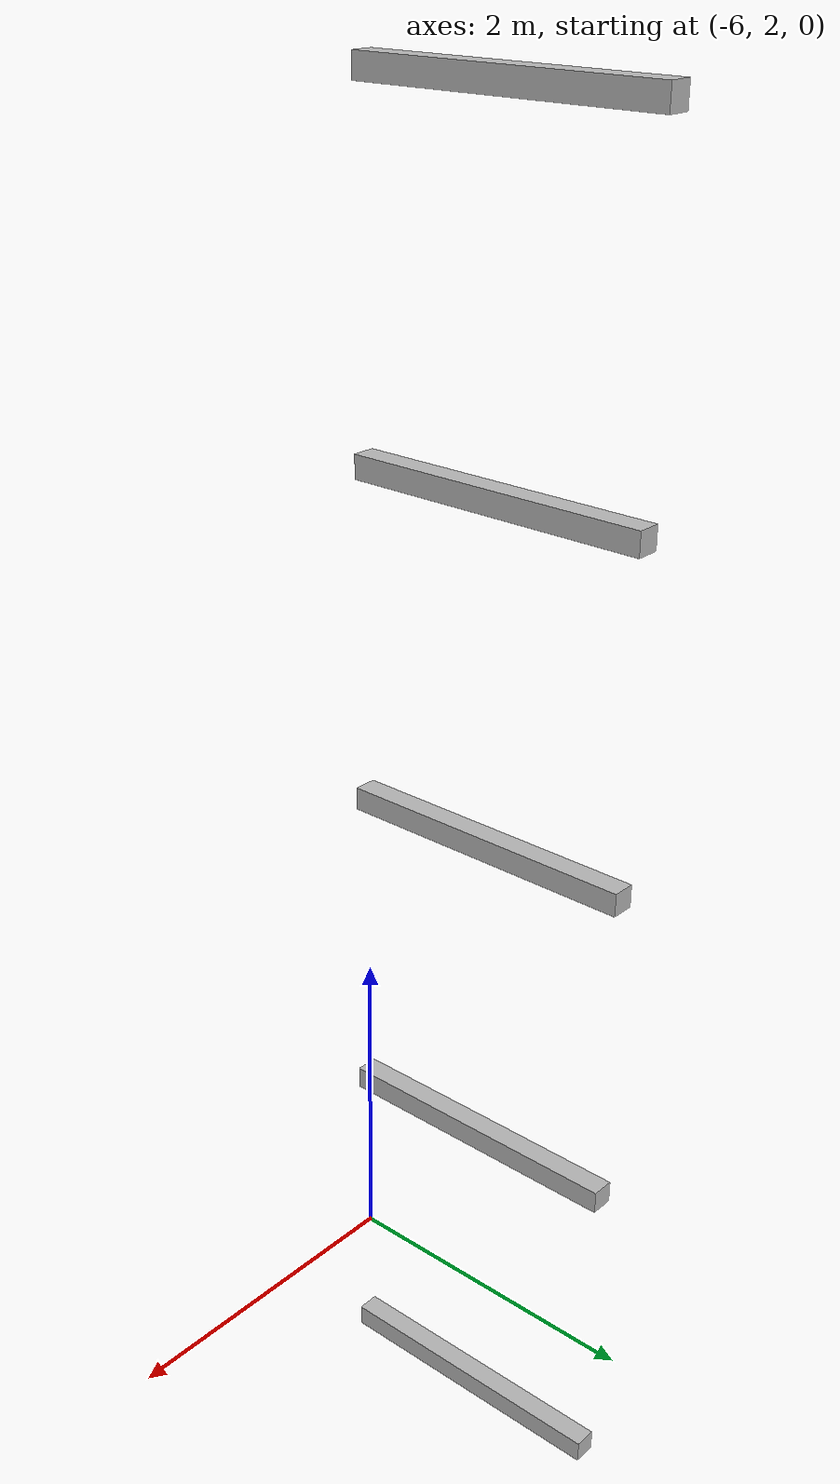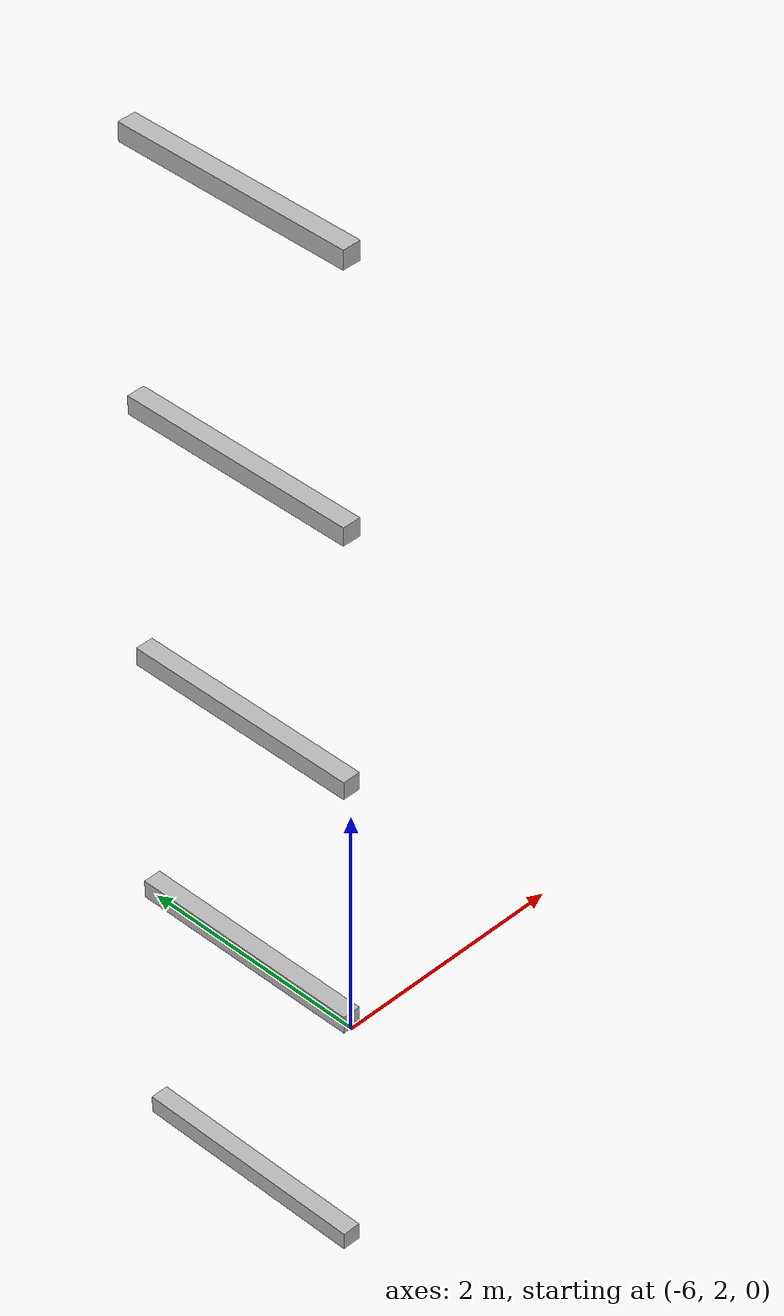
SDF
<sdf version="1.7">
 <world name="default">
  <model name="orthogonal_747_2.000.15_TS">
   <static>1</static>
   <link name="y_link_0_3_0">
    <inertial>
     <mass>1</mass>
     <inertia>
      <ixx>0.166667</ixx>
      <ixy>0</ixy>
      <ixz>0</ixz>
      <iyy>0.166667</iyy>
      <iyz>0</iyz>
      <izz>0.166667</izz>
     </inertia>
    </inertial>
    <pose>0 7.525 1.075 0 -0 0</pose>
    <visual name="visual_0">
     <laser_retro>491</laser_retro>
     <geometry><box><size>0.15 1e-06 0.15</size></box></geometry>
     <material>
      <script><name>Gazebo/Grey</name><uri>file://media/materials/scripts/gazebo.material</uri></script>
      <shader type="pixel"><normal_map>__default__</normal_map></shader>
      <ambient>0.678 0.498 0.659 1</ambient>
      <diffuse>0.7 0.7 0.7 1</diffuse>
      <specular>0.01 0.01 0.01 1</specular>
      <emissive>0 0 0 1</emissive>
     </material>
     <pose>0 -1 0 0 -0 0</pose>
     <transparency>1</transparency>
    </visual>
    <visual name="visual_1">
     <laser_retro>492</laser_retro>
     <geometry><box><size>0.15 1e-06 0.15</size></box></geometry>
     <material>
      <script><name>Gazebo/Grey</name><uri>file://media/materials/scripts/gazebo.material</uri></script>
      <shader type="pixel"><normal_map>__default__</normal_map></shader>
      <ambient>0.447 0.624 0.812 1</ambient>
      <diffuse>0.7 0.7 0.7 1</diffuse>
      <specular>0.01 0.01 0.01 1</specular>
      <emissive>0 0 0 1</emissive>
     </material>
     <pose>0 1 0 0 -0 0</pose>
     <transparency>1</transparency>
    </visual>
    <visual name="visual_2">
     <laser_retro>493</laser_retro>
     <geometry><box><size>0.15 2 1e-06</size></box></geometry>
     <material>
      <script><name>Gazebo/Grey</name><uri>file://media/materials/scripts/gazebo.material</uri></script>
      <shader type="pixel"><normal_map>__default__</normal_map></shader>
      <ambient>0.988 0.686 0.243 1</ambient>
      <diffuse>0.7 0.7 0.7 1</diffuse>
      <specular>0.01 0.01 0.01 1</specular>
      <emissive>0 0 0 1</emissive>
     </material>
     <pose>0 0 -0.075 0 -0 0</pose>
     <transparency>1</transparency>
    </visual>
    <visual name="visual_3">
     <laser_retro>494</laser_retro>
     <geometry><box><size>1e-06 2 0.15</size></box></geometry>
     <material>
      <script><name>Gazebo/Grey</name><uri>file://media/materials/scripts/gazebo.material</uri></script>
      <shader type="pixel"><normal_map>__default__</normal_map></shader>
      <ambient>0.988 0.914 0.31 1</ambient>
      <diffuse>0.7 0.7 0.7 1</diffuse>
      <specular>0.01 0.01 0.01 1</specular>
      <emissive>0 0 0 1</emissive>
     </material>
     <pose>0.075 0 0 0 -0 0</pose>
     <transparency>1</transparency>
    </visual>
    <visual name="visual_4">
     <laser_retro>495</laser_retro>
     <geometry><box><size>0.15 2 1e-06</size></box></geometry>
     <material>
      <script><name>Gazebo/Grey</name><uri>file://media/materials/scripts/gazebo.material</uri></script>
      <shader type="pixel"><normal_map>__default__</normal_map></shader>
      <ambient>0.937 0.161 0.161 1</ambient>
      <diffuse>0.7 0.7 0.7 1</diffuse>
      <specular>0.01 0.01 0.01 1</specular>
      <emissive>0 0 0 1</emissive>
     </material>
     <pose>0 0 0.075 0 -0 0</pose>
     <transparency>1</transparency>
    </visual>
    <visual name="visual_5">
     <laser_retro>496</laser_retro>
     <geometry><box><size>1e-06 2 0.15</size></box></geometry>
     <material>
      <script><name>Gazebo/Grey</name><uri>file://media/materials/scripts/gazebo.material</uri></script>
      <shader type="pixel"><normal_map>__default__</normal_map></shader>
      <ambient>0.541 0.886 0.204 1</ambient>
      <diffuse>0.7 0.7 0.7 1</diffuse>
      <specular>0.01 0.01 0.01 1</specular>
      <emissive>0 0 0 1</emissive>
     </material>
     <pose>-0.075 0 0 0 -0 0</pose>
     <transparency>1</transparency>
    </visual>
    <visual name="visual_texture">
     <geometry><box><size>0.149985 1.9998 0.149985</size></box></geometry>
     <material>
      <script>
       <uri>model://BASE_MODELS/simple_block_v2_textured/materials/scripts</uri>
       <uri>model://BASE_MODELS/simple_block_v2_textured/materials/textures</uri>
       <name>metal</name>
      </script>
     </material>
     <laser_retro>497</laser_retro>
    </visual>
    <collision name="collision">
     <geometry><box><size>0.15 2 0.15</size></box></geometry>
     <surface>
      <friction>
       <ode><mu>1</mu><mu2>1</mu2><fdir1>0 0 0</fdir1><slip1>0</slip1><slip2>0</slip2></ode>
       <torsional>
        <coefficient>1</coefficient>
        <patch_radius>0</patch_radius>
        <surface_radius>0</surface_radius>
        <use_patch_radius>1</use_patch_radius>
        <ode><slip>0</slip></ode>
       </torsional>
      </friction>
      <bounce><restitution_coefficient>0</restitution_coefficient><threshold>1e+06</threshold></bounce>
      <contact>
       <collide_without_contact>0</collide_without_contact>
       <collide_without_contact_bitmask>1</collide_without_contact_bitmask>
       <collide_bitmask>1</collide_bitmask>
       <ode>
        <soft_cfm>0</soft_cfm>
        <soft_erp>0.2</soft_erp>
        <kp>1e+13</kp>
        <kd>1</kd>
        <max_vel>0.01</max_vel>
        <min_depth>0</min_depth>
       </ode>
       <bullet>
        <split_impulse>1</split_impulse>
        <split_impulse_penetration_threshold>-0.01</split_impulse_penetration_threshold>
        <soft_cfm>0</soft_cfm>
        <soft_erp>0.2</soft_erp>
        <kp>1e+13</kp>
        <kd>1</kd>
       </bullet>
      </contact>
     </surface>
    </collision>
   </link>
   <link name="y_link_1_3_0">
    <inertial>
     <mass>1</mass>
     <inertia>
      <ixx>0.166667</ixx>
      <ixy>0</ixy>
      <ixz>0</ixz>
      <iyy>0.166667</iyy>
      <iyz>0</iyz>
      <izz>0.166667</izz>
     </inertia>
    </inertial>
    <pose>0 7.525 3.225 0 -0 0</pose>
    <visual name="visual_0">
     <laser_retro>1324</laser_retro>
     <geometry><box><size>0.15 1e-06 0.15</size></box></geometry>
     <material>
      <script><name>Gazebo/Grey</name><uri>file://media/materials/scripts/gazebo.material</uri></script>
      <shader type="pixel"><normal_map>__default__</normal_map></shader>
      <ambient>0.678 0.498 0.659 1</ambient>
      <diffuse>0.7 0.7 0.7 1</diffuse>
      <specular>0.01 0.01 0.01 1</specular>
      <emissive>0 0 0 1</emissive>
     </material>
     <pose>0 -1 0 0 -0 0</pose>
     <transparency>1</transparency>
    </visual>
    <visual name="visual_1">
     <laser_retro>1325</laser_retro>
     <geometry><box><size>0.15 1e-06 0.15</size></box></geometry>
     <material>
      <script><name>Gazebo/Grey</name><uri>file://media/materials/scripts/gazebo.material</uri></script>
      <shader type="pixel"><normal_map>__default__</normal_map></shader>
      <ambient>0.447 0.624 0.812 1</ambient>
      <diffuse>0.7 0.7 0.7 1</diffuse>
      <specular>0.01 0.01 0.01 1</specular>
      <emissive>0 0 0 1</emissive>
     </material>
     <pose>0 1 0 0 -0 0</pose>
     <transparency>1</transparency>
    </visual>
    <visual name="visual_2">
     <laser_retro>1326</laser_retro>
     <geometry><box><size>0.15 2 1e-06</size></box></geometry>
     <material>
      <script><name>Gazebo/Grey</name><uri>file://media/materials/scripts/gazebo.material</uri></script>
      <shader type="pixel"><normal_map>__default__</normal_map></shader>
      <ambient>0.988 0.686 0.243 1</ambient>
      <diffuse>0.7 0.7 0.7 1</diffuse>
      <specular>0.01 0.01 0.01 1</specular>
      <emissive>0 0 0 1</emissive>
     </material>
     <pose>0 0 -0.075 0 -0 0</pose>
     <transparency>1</transparency>
    </visual>
    <visual name="visual_3">
     <laser_retro>1327</laser_retro>
     <geometry><box><size>1e-06 2 0.15</size></box></geometry>
     <material>
      <script><name>Gazebo/Grey</name><uri>file://media/materials/scripts/gazebo.material</uri></script>
      <shader type="pixel"><normal_map>__default__</normal_map></shader>
      <ambient>0.988 0.914 0.31 1</ambient>
      <diffuse>0.7 0.7 0.7 1</diffuse>
      <specular>0.01 0.01 0.01 1</specular>
      <emissive>0 0 0 1</emissive>
     </material>
     <pose>0.075 0 0 0 -0 0</pose>
     <transparency>1</transparency>
    </visual>
    <visual name="visual_4">
     <laser_retro>1328</laser_retro>
     <geometry><box><size>0.15 2 1e-06</size></box></geometry>
     <material>
      <script><name>Gazebo/Grey</name><uri>file://media/materials/scripts/gazebo.material</uri></script>
      <shader type="pixel"><normal_map>__default__</normal_map></shader>
      <ambient>0.937 0.161 0.161 1</ambient>
      <diffuse>0.7 0.7 0.7 1</diffuse>
      <specular>0.01 0.01 0.01 1</specular>
      <emissive>0 0 0 1</emissive>
     </material>
     <pose>0 0 0.075 0 -0 0</pose>
     <transparency>1</transparency>
    </visual>
    <visual name="visual_5">
     <laser_retro>1329</laser_retro>
     <geometry><box><size>1e-06 2 0.15</size></box></geometry>
     <material>
      <script><name>Gazebo/Grey</name><uri>file://media/materials/scripts/gazebo.material</uri></script>
      <shader type="pixel"><normal_map>__default__</normal_map></shader>
      <ambient>0.541 0.886 0.204 1</ambient>
      <diffuse>0.7 0.7 0.7 1</diffuse>
      <specular>0.01 0.01 0.01 1</specular>
      <emissive>0 0 0 1</emissive>
     </material>
     <pose>-0.075 0 0 0 -0 0</pose>
     <transparency>1</transparency>
    </visual>
    <visual name="visual_texture">
     <geometry><box><size>0.149985 1.9998 0.149985</size></box></geometry>
     <material>
      <script>
       <uri>model://BASE_MODELS/simple_block_v2_textured/materials/scripts</uri>
       <uri>model://BASE_MODELS/simple_block_v2_textured/materials/textures</uri>
       <name>metal</name>
      </script>
     </material>
     <laser_retro>1330</laser_retro>
    </visual>
    <collision name="collision">
     <geometry><box><size>0.15 2 0.15</size></box></geometry>
     <surface>
      <friction>
       <ode><mu>1</mu><mu2>1</mu2><fdir1>0 0 0</fdir1><slip1>0</slip1><slip2>0</slip2></ode>
       <torsional>
        <coefficient>1</coefficient>
        <patch_radius>0</patch_radius>
        <surface_radius>0</surface_radius>
        <use_patch_radius>1</use_patch_radius>
        <ode><slip>0</slip></ode>
       </torsional>
      </friction>
      <bounce><restitution_coefficient>0</restitution_coefficient><threshold>1e+06</threshold></bounce>
      <contact>
       <collide_without_contact>0</collide_without_contact>
       <collide_without_contact_bitmask>1</collide_without_contact_bitmask>
       <collide_bitmask>1</collide_bitmask>
       <ode>
        <soft_cfm>0</soft_cfm>
        <soft_erp>0.2</soft_erp>
        <kp>1e+13</kp>
        <kd>1</kd>
        <max_vel>0.01</max_vel>
        <min_depth>0</min_depth>
       </ode>
       <bullet>
        <split_impulse>1</split_impulse>
        <split_impulse_penetration_threshold>-0.01</split_impulse_penetration_threshold>
        <soft_cfm>0</soft_cfm>
        <soft_erp>0.2</soft_erp>
        <kp>1e+13</kp>
        <kd>1</kd>
       </bullet>
      </contact>
     </surface>
    </collision>
   </link>
   <link name="y_link_2_3_0">
    <inertial>
     <mass>1</mass>
     <inertia>
      <ixx>0.166667</ixx>
      <ixy>0</ixy>
      <ixz>0</ixz>
      <iyy>0.166667</iyy>
      <iyz>0</iyz>
      <izz>0.166667</izz>
     </inertia>
    </inertial>
    <pose>0 7.525 5.375 0 -0 0</pose>
    <visual name="visual_0">
     <laser_retro>2227</laser_retro>
     <geometry><box><size>0.15 1e-06 0.15</size></box></geometry>
     <material>
      <script><name>Gazebo/Grey</name><uri>file://media/materials/scripts/gazebo.material</uri></script>
      <shader type="pixel"><normal_map>__default__</normal_map></shader>
      <ambient>0.678 0.498 0.659 1</ambient>
      <diffuse>0.7 0.7 0.7 1</diffuse>
      <specular>0.01 0.01 0.01 1</specular>
      <emissive>0 0 0 1</emissive>
     </material>
     <pose>0 -1 0 0 -0 0</pose>
     <transparency>1</transparency>
    </visual>
    <visual name="visual_1">
     <laser_retro>2228</laser_retro>
     <geometry><box><size>0.15 1e-06 0.15</size></box></geometry>
     <material>
      <script><name>Gazebo/Grey</name><uri>file://media/materials/scripts/gazebo.material</uri></script>
      <shader type="pixel"><normal_map>__default__</normal_map></shader>
      <ambient>0.447 0.624 0.812 1</ambient>
      <diffuse>0.7 0.7 0.7 1</diffuse>
      <specular>0.01 0.01 0.01 1</specular>
      <emissive>0 0 0 1</emissive>
     </material>
     <pose>0 1 0 0 -0 0</pose>
     <transparency>1</transparency>
    </visual>
    <visual name="visual_2">
     <laser_retro>2229</laser_retro>
     <geometry><box><size>0.15 2 1e-06</size></box></geometry>
     <material>
      <script><name>Gazebo/Grey</name><uri>file://media/materials/scripts/gazebo.material</uri></script>
      <shader type="pixel"><normal_map>__default__</normal_map></shader>
      <ambient>0.988 0.686 0.243 1</ambient>
      <diffuse>0.7 0.7 0.7 1</diffuse>
      <specular>0.01 0.01 0.01 1</specular>
      <emissive>0 0 0 1</emissive>
     </material>
     <pose>0 0 -0.075 0 -0 0</pose>
     <transparency>1</transparency>
    </visual>
    <visual name="visual_3">
     <laser_retro>2230</laser_retro>
     <geometry><box><size>1e-06 2 0.15</size></box></geometry>
     <material>
      <script><name>Gazebo/Grey</name><uri>file://media/materials/scripts/gazebo.material</uri></script>
      <shader type="pixel"><normal_map>__default__</normal_map></shader>
      <ambient>0.988 0.914 0.31 1</ambient>
      <diffuse>0.7 0.7 0.7 1</diffuse>
      <specular>0.01 0.01 0.01 1</specular>
      <emissive>0 0 0 1</emissive>
     </material>
     <pose>0.075 0 0 0 -0 0</pose>
     <transparency>1</transparency>
    </visual>
    <visual name="visual_4">
     <laser_retro>2231</laser_retro>
     <geometry><box><size>0.15 2 1e-06</size></box></geometry>
     <material>
      <script><name>Gazebo/Grey</name><uri>file://media/materials/scripts/gazebo.material</uri></script>
      <shader type="pixel"><normal_map>__default__</normal_map></shader>
      <ambient>0.937 0.161 0.161 1</ambient>
      <diffuse>0.7 0.7 0.7 1</diffuse>
      <specular>0.01 0.01 0.01 1</specular>
      <emissive>0 0 0 1</emissive>
     </material>
     <pose>0 0 0.075 0 -0 0</pose>
     <transparency>1</transparency>
    </visual>
    <visual name="visual_5">
     <laser_retro>2232</laser_retro>
     <geometry><box><size>1e-06 2 0.15</size></box></geometry>
     <material>
      <script><name>Gazebo/Grey</name><uri>file://media/materials/scripts/gazebo.material</uri></script>
      <shader type="pixel"><normal_map>__default__</normal_map></shader>
      <ambient>0.541 0.886 0.204 1</ambient>
      <diffuse>0.7 0.7 0.7 1</diffuse>
      <specular>0.01 0.01 0.01 1</specular>
      <emissive>0 0 0 1</emissive>
     </material>
     <pose>-0.075 0 0 0 -0 0</pose>
     <transparency>1</transparency>
    </visual>
    <visual name="visual_texture">
     <geometry><box><size>0.149985 1.9998 0.149985</size></box></geometry>
     <material>
      <script>
       <uri>model://BASE_MODELS/simple_block_v2_textured/materials/scripts</uri>
       <uri>model://BASE_MODELS/simple_block_v2_textured/materials/textures</uri>
       <name>metal</name>
      </script>
     </material>
     <laser_retro>2233</laser_retro>
    </visual>
    <collision name="collision">
     <geometry><box><size>0.15 2 0.15</size></box></geometry>
     <surface>
      <friction>
       <ode><mu>1</mu><mu2>1</mu2><fdir1>0 0 0</fdir1><slip1>0</slip1><slip2>0</slip2></ode>
       <torsional>
        <coefficient>1</coefficient>
        <patch_radius>0</patch_radius>
        <surface_radius>0</surface_radius>
        <use_patch_radius>1</use_patch_radius>
        <ode><slip>0</slip></ode>
       </torsional>
      </friction>
      <bounce><restitution_coefficient>0</restitution_coefficient><threshold>1e+06</threshold></bounce>
      <contact>
       <collide_without_contact>0</collide_without_contact>
       <collide_without_contact_bitmask>1</collide_without_contact_bitmask>
       <collide_bitmask>1</collide_bitmask>
       <ode>
        <soft_cfm>0</soft_cfm>
        <soft_erp>0.2</soft_erp>
        <kp>1e+13</kp>
        <kd>1</kd>
        <max_vel>0.01</max_vel>
        <min_depth>0</min_depth>
       </ode>
       <bullet>
        <split_impulse>1</split_impulse>
        <split_impulse_penetration_threshold>-0.01</split_impulse_penetration_threshold>
        <soft_cfm>0</soft_cfm>
        <soft_erp>0.2</soft_erp>
        <kp>1e+13</kp>
        <kd>1</kd>
       </bullet>
      </contact>
     </surface>
    </collision>
   </link>
   <link name="y_link_3_3_0">
    <inertial>
     <mass>1</mass>
     <inertia>
      <ixx>0.166667</ixx>
      <ixy>0</ixy>
      <ixz>0</ixz>
      <iyy>0.166667</iyy>
      <iyz>0</iyz>
      <izz>0.166667</izz>
     </inertia>
    </inertial>
    <pose>0 7.525 7.525 0 -0 0</pose>
    <visual name="visual_0">
     <laser_retro>3130</laser_retro>
     <geometry><box><size>0.15 1e-06 0.15</size></box></geometry>
     <material>
      <script><name>Gazebo/Grey</name><uri>file://media/materials/scripts/gazebo.material</uri></script>
      <shader type="pixel"><normal_map>__default__</normal_map></shader>
      <ambient>0.678 0.498 0.659 1</ambient>
      <diffuse>0.7 0.7 0.7 1</diffuse>
      <specular>0.01 0.01 0.01 1</specular>
      <emissive>0 0 0 1</emissive>
     </material>
     <pose>0 -1 0 0 -0 0</pose>
     <transparency>1</transparency>
    </visual>
    <visual name="visual_1">
     <laser_retro>3131</laser_retro>
     <geometry><box><size>0.15 1e-06 0.15</size></box></geometry>
     <material>
      <script><name>Gazebo/Grey</name><uri>file://media/materials/scripts/gazebo.material</uri></script>
      <shader type="pixel"><normal_map>__default__</normal_map></shader>
      <ambient>0.447 0.624 0.812 1</ambient>
      <diffuse>0.7 0.7 0.7 1</diffuse>
      <specular>0.01 0.01 0.01 1</specular>
      <emissive>0 0 0 1</emissive>
     </material>
     <pose>0 1 0 0 -0 0</pose>
     <transparency>1</transparency>
    </visual>
    <visual name="visual_2">
     <laser_retro>3132</laser_retro>
     <geometry><box><size>0.15 2 1e-06</size></box></geometry>
     <material>
      <script><name>Gazebo/Grey</name><uri>file://media/materials/scripts/gazebo.material</uri></script>
      <shader type="pixel"><normal_map>__default__</normal_map></shader>
      <ambient>0.988 0.686 0.243 1</ambient>
      <diffuse>0.7 0.7 0.7 1</diffuse>
      <specular>0.01 0.01 0.01 1</specular>
      <emissive>0 0 0 1</emissive>
     </material>
     <pose>0 0 -0.075 0 -0 0</pose>
     <transparency>1</transparency>
    </visual>
    <visual name="visual_3">
     <laser_retro>3133</laser_retro>
     <geometry><box><size>1e-06 2 0.15</size></box></geometry>
     <material>
      <script><name>Gazebo/Grey</name><uri>file://media/materials/scripts/gazebo.material</uri></script>
      <shader type="pixel"><normal_map>__default__</normal_map></shader>
      <ambient>0.988 0.914 0.31 1</ambient>
      <diffuse>0.7 0.7 0.7 1</diffuse>
      <specular>0.01 0.01 0.01 1</specular>
      <emissive>0 0 0 1</emissive>
     </material>
     <pose>0.075 0 0 0 -0 0</pose>
     <transparency>1</transparency>
    </visual>
    <visual name="visual_4">
     <laser_retro>3134</laser_retro>
     <geometry><box><size>0.15 2 1e-06</size></box></geometry>
     <material>
      <script><name>Gazebo/Grey</name><uri>file://media/materials/scripts/gazebo.material</uri></script>
      <shader type="pixel"><normal_map>__default__</normal_map></shader>
      <ambient>0.937 0.161 0.161 1</ambient>
      <diffuse>0.7 0.7 0.7 1</diffuse>
      <specular>0.01 0.01 0.01 1</specular>
      <emissive>0 0 0 1</emissive>
     </material>
     <pose>0 0 0.075 0 -0 0</pose>
     <transparency>1</transparency>
    </visual>
    <visual name="visual_5">
     <laser_retro>3135</laser_retro>
     <geometry><box><size>1e-06 2 0.15</size></box></geometry>
     <material>
      <script><name>Gazebo/Grey</name><uri>file://media/materials/scripts/gazebo.material</uri></script>
      <shader type="pixel"><normal_map>__default__</normal_map></shader>
      <ambient>0.541 0.886 0.204 1</ambient>
      <diffuse>0.7 0.7 0.7 1</diffuse>
      <specular>0.01 0.01 0.01 1</specular>
      <emissive>0 0 0 1</emissive>
     </material>
     <pose>-0.075 0 0 0 -0 0</pose>
     <transparency>1</transparency>
    </visual>
    <visual name="visual_texture">
     <geometry><box><size>0.149985 1.9998 0.149985</size></box></geometry>
     <material>
      <script>
       <uri>model://BASE_MODELS/simple_block_v2_textured/materials/scripts</uri>
       <uri>model://BASE_MODELS/simple_block_v2_textured/materials/textures</uri>
       <name>metal</name>
      </script>
     </material>
     <laser_retro>3136</laser_retro>
    </visual>
    <collision name="collision">
     <geometry><box><size>0.15 2 0.15</size></box></geometry>
     <surface>
      <friction>
       <ode><mu>1</mu><mu2>1</mu2><fdir1>0 0 0</fdir1><slip1>0</slip1><slip2>0</slip2></ode>
       <torsional>
        <coefficient>1</coefficient>
        <patch_radius>0</patch_radius>
        <surface_radius>0</surface_radius>
        <use_patch_radius>1</use_patch_radius>
        <ode><slip>0</slip></ode>
       </torsional>
      </friction>
      <bounce><restitution_coefficient>0</restitution_coefficient><threshold>1e+06</threshold></bounce>
      <contact>
       <collide_without_contact>0</collide_without_contact>
       <collide_without_contact_bitmask>1</collide_without_contact_bitmask>
       <collide_bitmask>1</collide_bitmask>
       <ode>
        <soft_cfm>0</soft_cfm>
        <soft_erp>0.2</soft_erp>
        <kp>1e+13</kp>
        <kd>1</kd>
        <max_vel>0.01</max_vel>
        <min_depth>0</min_depth>
       </ode>
       <bullet>
        <split_impulse>1</split_impulse>
        <split_impulse_penetration_threshold>-0.01</split_impulse_penetration_threshold>
        <soft_cfm>0</soft_cfm>
        <soft_erp>0.2</soft_erp>
        <kp>1e+13</kp>
        <kd>1</kd>
       </bullet>
      </contact>
     </surface>
    </collision>
   </link>
   <link name="y_link_4_3_0">
    <inertial>
     <mass>1</mass>
     <inertia>
      <ixx>0.166667</ixx>
      <ixy>0</ixy>
      <ixz>0</ixz>
      <iyy>0.166667</iyy>
      <iyz>0</iyz>
      <izz>0.166667</izz>
     </inertia>
    </inertial>
    <pose>0 7.525 9.675 0 -0 0</pose>
    <visual name="visual_0">
     <laser_retro>4033</laser_retro>
     <geometry><box><size>0.15 1e-06 0.15</size></box></geometry>
     <material>
      <script><name>Gazebo/Grey</name><uri>file://media/materials/scripts/gazebo.material</uri></script>
      <shader type="pixel"><normal_map>__default__</normal_map></shader>
      <ambient>0.678 0.498 0.659 1</ambient>
      <diffuse>0.7 0.7 0.7 1</diffuse>
      <specular>0.01 0.01 0.01 1</specular>
      <emissive>0 0 0 1</emissive>
     </material>
     <pose>0 -1 0 0 -0 0</pose>
     <transparency>1</transparency>
    </visual>
    <visual name="visual_1">
     <laser_retro>4034</laser_retro>
     <geometry><box><size>0.15 1e-06 0.15</size></box></geometry>
     <material>
      <script><name>Gazebo/Grey</name><uri>file://media/materials/scripts/gazebo.material</uri></script>
      <shader type="pixel"><normal_map>__default__</normal_map></shader>
      <ambient>0.447 0.624 0.812 1</ambient>
      <diffuse>0.7 0.7 0.7 1</diffuse>
      <specular>0.01 0.01 0.01 1</specular>
      <emissive>0 0 0 1</emissive>
     </material>
     <pose>0 1 0 0 -0 0</pose>
     <transparency>1</transparency>
    </visual>
    <visual name="visual_2">
     <laser_retro>4035</laser_retro>
     <geometry><box><size>0.15 2 1e-06</size></box></geometry>
     <material>
      <script><name>Gazebo/Grey</name><uri>file://media/materials/scripts/gazebo.material</uri></script>
      <shader type="pixel"><normal_map>__default__</normal_map></shader>
      <ambient>0.988 0.686 0.243 1</ambient>
      <diffuse>0.7 0.7 0.7 1</diffuse>
      <specular>0.01 0.01 0.01 1</specular>
      <emissive>0 0 0 1</emissive>
     </material>
     <pose>0 0 -0.075 0 -0 0</pose>
     <transparency>1</transparency>
    </visual>
    <visual name="visual_3">
     <laser_retro>4036</laser_retro>
     <geometry><box><size>1e-06 2 0.15</size></box></geometry>
     <material>
      <script><name>Gazebo/Grey</name><uri>file://media/materials/scripts/gazebo.material</uri></script>
      <shader type="pixel"><normal_map>__default__</normal_map></shader>
      <ambient>0.988 0.914 0.31 1</ambient>
      <diffuse>0.7 0.7 0.7 1</diffuse>
      <specular>0.01 0.01 0.01 1</specular>
      <emissive>0 0 0 1</emissive>
     </material>
     <pose>0.075 0 0 0 -0 0</pose>
     <transparency>1</transparency>
    </visual>
    <visual name="visual_4">
     <laser_retro>4037</laser_retro>
     <geometry><box><size>0.15 2 1e-06</size></box></geometry>
     <material>
      <script><name>Gazebo/Grey</name><uri>file://media/materials/scripts/gazebo.material</uri></script>
      <shader type="pixel"><normal_map>__default__</normal_map></shader>
      <ambient>0.937 0.161 0.161 1</ambient>
      <diffuse>0.7 0.7 0.7 1</diffuse>
      <specular>0.01 0.01 0.01 1</specular>
      <emissive>0 0 0 1</emissive>
     </material>
     <pose>0 0 0.075 0 -0 0</pose>
     <transparency>1</transparency>
    </visual>
    <visual name="visual_5">
     <laser_retro>4038</laser_retro>
     <geometry><box><size>1e-06 2 0.15</size></box></geometry>
     <material>
      <script><name>Gazebo/Grey</name><uri>file://media/materials/scripts/gazebo.material</uri></script>
      <shader type="pixel"><normal_map>__default__</normal_map></shader>
      <ambient>0.541 0.886 0.204 1</ambient>
      <diffuse>0.7 0.7 0.7 1</diffuse>
      <specular>0.01 0.01 0.01 1</specular>
      <emissive>0 0 0 1</emissive>
     </material>
     <pose>-0.075 0 0 0 -0 0</pose>
     <transparency>1</transparency>
    </visual>
    <visual name="visual_texture">
     <geometry><box><size>0.149985 1.9998 0.149985</size></box></geometry>
     <material>
      <script>
       <uri>model://BASE_MODELS/simple_block_v2_textured/materials/scripts</uri>
       <uri>model://BASE_MODELS/simple_block_v2_textured/materials/textures</uri>
       <name>metal</name>
      </script>
     </material>
     <laser_retro>4039</laser_retro>
    </visual>
    <collision name="collision">
     <geometry><box><size>0.15 2 0.15</size></box></geometry>
     <surface>
      <friction>
       <ode><mu>1</mu><mu2>1</mu2><fdir1>0 0 0</fdir1><slip1>0</slip1><slip2>0</slip2></ode>
       <torsional>
        <coefficient>1</coefficient>
        <patch_radius>0</patch_radius>
        <surface_radius>0</surface_radius>
        <use_patch_radius>1</use_patch_radius>
        <ode><slip>0</slip></ode>
       </torsional>
      </friction>
      <bounce><restitution_coefficient>0</restitution_coefficient><threshold>1e+06</threshold></bounce>
      <contact>
       <collide_without_contact>0</collide_without_contact>
       <collide_without_contact_bitmask>1</collide_without_contact_bitmask>
       <collide_bitmask>1</collide_bitmask>
       <ode>
        <soft_cfm>0</soft_cfm>
        <soft_erp>0.2</soft_erp>
        <kp>1e+13</kp>
        <kd>1</kd>
        <max_vel>0.01</max_vel>
        <min_depth>0</min_depth>
       </ode>
       <bullet>
        <split_impulse>1</split_impulse>
        <split_impulse_penetration_threshold>-0.01</split_impulse_penetration_threshold>
        <soft_cfm>0</soft_cfm>
        <soft_erp>0.2</soft_erp>
        <kp>1e+13</kp>
        <kd>1</kd>
       </bullet>
      </contact>
     </surface>
    </collision>
   </link>
   <pose>-6.47624 -5 -2.5 0 -0 0</pose>
  </model>
 </world>
</sdf>
